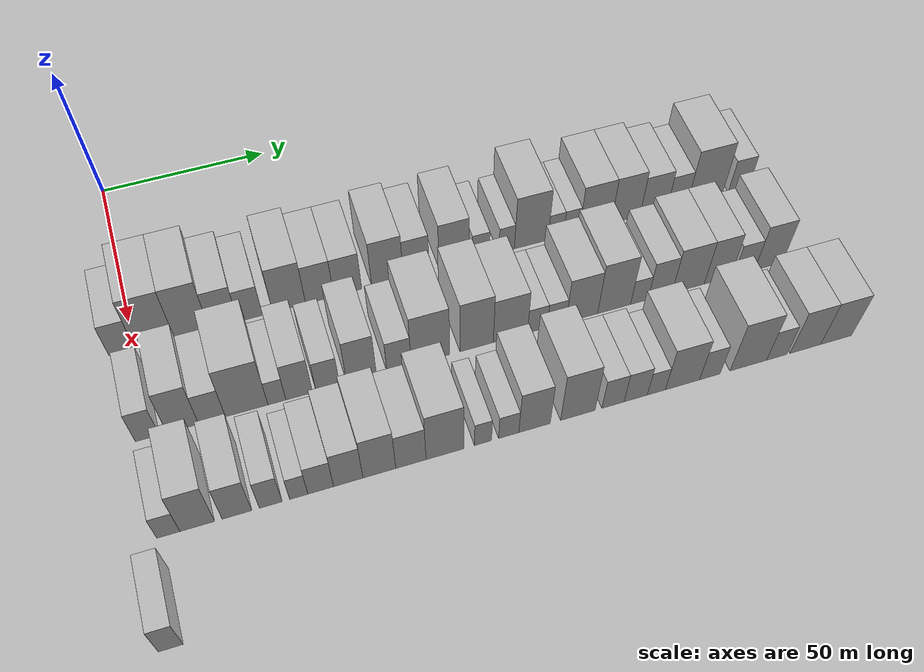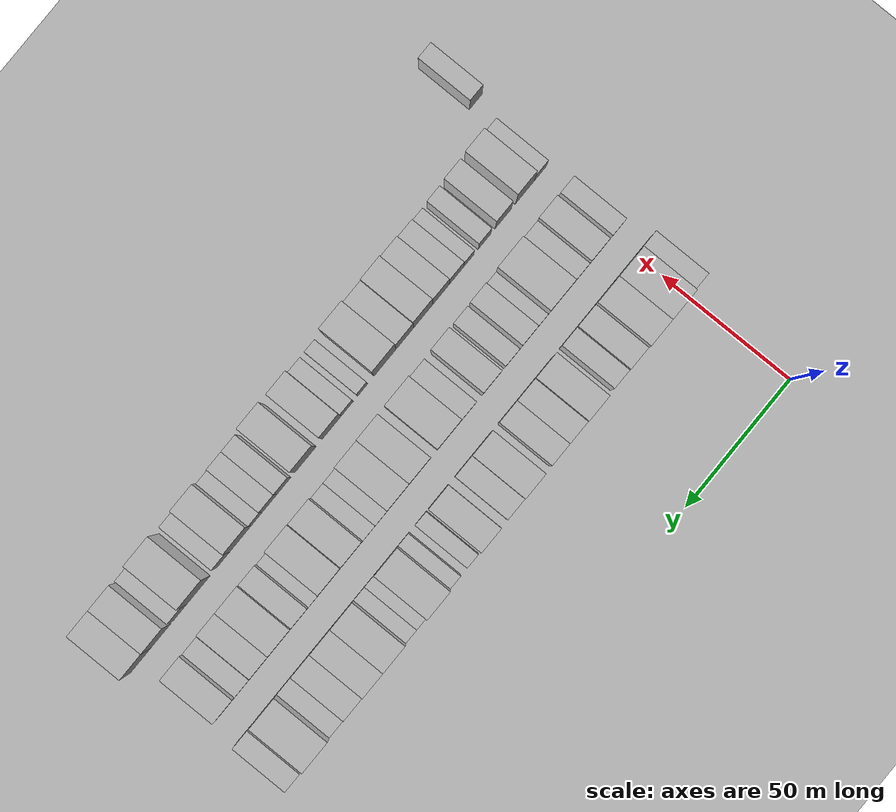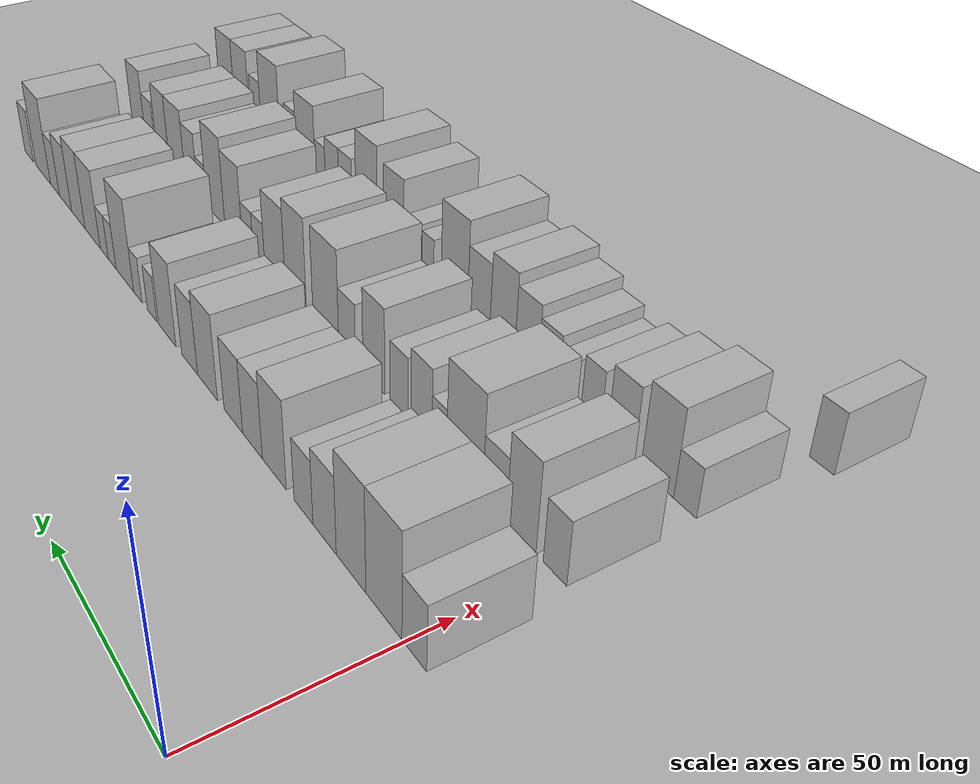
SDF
<sdf version="1.6">
 <world name="default">
  <include><name>ground_plane_1</name><uri>model://HANNAS_ground_plane</uri></include>
  <include>
   <name>ground_plane_2</name>
   <uri>model://HANNAS_ground_plane</uri>
   <pose>100 0 0  0 0 0</pose>
  </include>
  <model name="building_60">
   <static>1</static>
   <pose>50.0000 -3.3186 0 0.000000 0.000000 0.000000</pose>
   <link name="link">
    <pose>0 0 7.50 0 0 0</pose>
    <collision name="collision"><geometry><box><size>20.0000 7.2764 15.0000</size></box></geometry></collision>
    <visual name="visual">
     <cast_shadows>0</cast_shadows>
     <geometry><box><size>20.0000 7.2764 15.0000</size></box></geometry>
     <material>
      <script>
       <uri>model://HANNAS_wall/materials/scripts</uri>
       <uri>model://HANNAS_wall/materials/textures</uri>
       <name>vrc/HANNAS_wall</name>
      </script>
     </material>
    </visual>
   </link>
  </model>
  <model name="building_61">
   <static>1</static>
   <pose>50.0000 5.9535 0 0.000000 0.000000 0.000000</pose>
   <link name="link">
    <pose>0 0 12.00 0 0 0</pose>
    <collision name="collision"><geometry><box><size>20.0000 11.2679 24.0000</size></box></geometry></collision>
    <visual name="visual">
     <cast_shadows>0</cast_shadows>
     <geometry><box><size>20.0000 11.2679 24.0000</size></box></geometry>
     <material>
      <script>
       <uri>model://HANNAS_wall/materials/scripts</uri>
       <uri>model://HANNAS_wall/materials/textures</uri>
       <name>vrc/HANNAS_wall</name>
      </script>
     </material>
    </visual>
   </link>
  </model>
  <model name="building_62">
   <static>1</static>
   <pose>50.0000 16.5843 0 0.000000 0.000000 0.000000</pose>
   <link name="link">
    <pose>0 0 12.00 0 0 0</pose>
    <collision name="collision"><geometry><box><size>20.0000 9.9937 24.0000</size></box></geometry></collision>
    <visual name="visual">
     <cast_shadows>0</cast_shadows>
     <geometry><box><size>20.0000 9.9937 24.0000</size></box></geometry>
     <material>
      <script>
       <uri>model://HANNAS_wall/materials/scripts</uri>
       <uri>model://HANNAS_wall/materials/textures</uri>
       <name>vrc/HANNAS_wall</name>
      </script>
     </material>
    </visual>
   </link>
  </model>
  <model name="building_63">
   <static>1</static>
   <pose>50.0000 25.7559 0 0.000000 0.000000 0.000000</pose>
   <link name="link">
    <pose>0 0 9.00 0 0 0</pose>
    <collision name="collision"><geometry><box><size>20.0000 8.3497 18.0000</size></box></geometry></collision>
    <visual name="visual">
     <cast_shadows>0</cast_shadows>
     <geometry><box><size>20.0000 8.3497 18.0000</size></box></geometry>
     <material>
      <script>
       <uri>model://HANNAS_wall/materials/scripts</uri>
       <uri>model://HANNAS_wall/materials/textures</uri>
       <name>vrc/HANNAS_wall</name>
      </script>
     </material>
    </visual>
   </link>
  </model>
  <model name="building_64">
   <static>1</static>
   <pose>50.0000 33.4857 0 0.000000 0.000000 0.000000</pose>
   <link name="link">
    <pose>0 0 7.50 0 0 0</pose>
    <collision name="collision"><geometry><box><size>20.0000 7.1099 15.0000</size></box></geometry></collision>
    <visual name="visual">
     <cast_shadows>0</cast_shadows>
     <geometry><box><size>20.0000 7.1099 15.0000</size></box></geometry>
     <material>
      <script>
       <uri>model://HANNAS_wall/materials/scripts</uri>
       <uri>model://HANNAS_wall/materials/textures</uri>
       <name>vrc/HANNAS_wall</name>
      </script>
     </material>
    </visual>
   </link>
  </model>
  <model name="building_65">
   <static>1</static>
   <pose>50.0000 44.8790 0 0.000000 0.000000 0.000000</pose>
   <link name="link">
    <pose>0 0 10.50 0 0 0</pose>
    <collision name="collision"><geometry><box><size>20.0000 9.6767 21.0000</size></box></geometry></collision>
    <visual name="visual">
     <cast_shadows>0</cast_shadows>
     <geometry><box><size>20.0000 9.6767 21.0000</size></box></geometry>
     <material>
      <script>
       <uri>model://HANNAS_wall/materials/scripts</uri>
       <uri>model://HANNAS_wall/materials/textures</uri>
       <name>vrc/HANNAS_wall</name>
      </script>
     </material>
    </visual>
   </link>
  </model>
  <model name="building_66">
   <static>1</static>
   <pose>50.0000 53.9146 0 0.000000 0.000000 0.000000</pose>
   <link name="link">
    <pose>0 0 9.00 0 0 0</pose>
    <collision name="collision"><geometry><box><size>20.0000 8.3945 18.0000</size></box></geometry></collision>
    <visual name="visual">
     <cast_shadows>0</cast_shadows>
     <geometry><box><size>20.0000 8.3945 18.0000</size></box></geometry>
     <material>
      <script>
       <uri>model://HANNAS_wall/materials/scripts</uri>
       <uri>model://HANNAS_wall/materials/textures</uri>
       <name>vrc/HANNAS_wall</name>
      </script>
     </material>
    </visual>
   </link>
  </model>
  <model name="building_67">
   <static>1</static>
   <pose>50.0000 62.2940 0 0.000000 0.000000 0.000000</pose>
   <link name="link">
    <pose>0 0 9.00 0 0 0</pose>
    <collision name="collision"><geometry><box><size>20.0000 8.3644 18.0000</size></box></geometry></collision>
    <visual name="visual">
     <cast_shadows>0</cast_shadows>
     <geometry><box><size>20.0000 8.3644 18.0000</size></box></geometry>
     <material>
      <script>
       <uri>model://HANNAS_wall/materials/scripts</uri>
       <uri>model://HANNAS_wall/materials/textures</uri>
       <name>vrc/HANNAS_wall</name>
      </script>
     </material>
    </visual>
   </link>
  </model>
  <model name="building_68">
   <static>1</static>
   <pose>50.0000 74.2563 0 0.000000 0.000000 0.000000</pose>
   <link name="link">
    <pose>0 0 10.50 0 0 0</pose>
    <collision name="collision"><geometry><box><size>20.0000 9.5601 21.0000</size></box></geometry></collision>
    <visual name="visual">
     <cast_shadows>0</cast_shadows>
     <geometry><box><size>20.0000 9.5601 21.0000</size></box></geometry>
     <material>
      <script>
       <uri>model://HANNAS_wall/materials/scripts</uri>
       <uri>model://HANNAS_wall/materials/textures</uri>
       <name>vrc/HANNAS_wall</name>
      </script>
     </material>
    </visual>
   </link>
  </model>
  <model name="building_69">
   <static>1</static>
   <pose>50.0000 83.0197 0 0.000000 0.000000 0.000000</pose>
   <link name="link">
    <pose>0 0 9.00 0 0 0</pose>
    <collision name="collision"><geometry><box><size>20.0000 7.9668 18.0000</size></box></geometry></collision>
    <visual name="visual">
     <cast_shadows>0</cast_shadows>
     <geometry><box><size>20.0000 7.9668 18.0000</size></box></geometry>
     <material>
      <script>
       <uri>model://HANNAS_wall/materials/scripts</uri>
       <uri>model://HANNAS_wall/materials/textures</uri>
       <name>vrc/HANNAS_wall</name>
      </script>
     </material>
    </visual>
   </link>
  </model>
  <model name="building_70">
   <static>1</static>
   <pose>50.0000 94.6679 0 0.000000 0.000000 0.000000</pose>
   <link name="link">
    <pose>0 0 10.50 0 0 0</pose>
    <collision name="collision"><geometry><box><size>20.0000 9.3296 21.0000</size></box></geometry></collision>
    <visual name="visual">
     <cast_shadows>0</cast_shadows>
     <geometry><box><size>20.0000 9.3296 21.0000</size></box></geometry>
     <material>
      <script>
       <uri>model://HANNAS_wall/materials/scripts</uri>
       <uri>model://HANNAS_wall/materials/textures</uri>
       <name>vrc/HANNAS_wall</name>
      </script>
     </material>
    </visual>
   </link>
  </model>
  <model name="building_71">
   <static>1</static>
   <pose>50.0000 102.9779 0 0.000000 0.000000 0.000000</pose>
   <link name="link">
    <pose>0 0 6.00 0 0 0</pose>
    <collision name="collision"><geometry><box><size>20.0000 5.2904 12.0000</size></box></geometry></collision>
    <visual name="visual">
     <cast_shadows>0</cast_shadows>
     <geometry><box><size>20.0000 5.2904 12.0000</size></box></geometry>
     <material>
      <script>
       <uri>model://HANNAS_wall/materials/scripts</uri>
       <uri>model://HANNAS_wall/materials/textures</uri>
       <name>vrc/HANNAS_wall</name>
      </script>
     </material>
    </visual>
   </link>
  </model>
  <model name="building_72">
   <static>1</static>
   <pose>50.0000 111.0729 0 0.000000 0.000000 0.000000</pose>
   <link name="link">
    <pose>0 0 6.00 0 0 0</pose>
    <collision name="collision"><geometry><box><size>20.0000 4.8996 12.0000</size></box></geometry></collision>
    <visual name="visual">
     <cast_shadows>0</cast_shadows>
     <geometry><box><size>20.0000 4.8996 12.0000</size></box></geometry>
     <material>
      <script>
       <uri>model://HANNAS_wall/materials/scripts</uri>
       <uri>model://HANNAS_wall/materials/textures</uri>
       <name>vrc/HANNAS_wall</name>
      </script>
     </material>
    </visual>
   </link>
  </model>
  <model name="building_73">
   <static>1</static>
   <pose>50.0000 118.8591 0 0.000000 0.000000 0.000000</pose>
   <link name="link">
    <pose>0 0 12.00 0 0 0</pose>
    <collision name="collision"><geometry><box><size>20.0000 10.6728 24.0000</size></box></geometry></collision>
    <visual name="visual">
     <cast_shadows>0</cast_shadows>
     <geometry><box><size>20.0000 10.6728 24.0000</size></box></geometry>
     <material>
      <script>
       <uri>model://HANNAS_wall/materials/scripts</uri>
       <uri>model://HANNAS_wall/materials/textures</uri>
       <name>vrc/HANNAS_wall</name>
      </script>
     </material>
    </visual>
   </link>
  </model>
  <model name="building_74">
   <static>1</static>
   <pose>50.0000 126.6838 0 0.000000 0.000000 0.000000</pose>
   <link name="link">
    <pose>0 0 6.00 0 0 0</pose>
    <collision name="collision"><geometry><box><size>20.0000 4.9766 12.0000</size></box></geometry></collision>
    <visual name="visual">
     <cast_shadows>0</cast_shadows>
     <geometry><box><size>20.0000 4.9766 12.0000</size></box></geometry>
     <material>
      <script>
       <uri>model://HANNAS_wall/materials/scripts</uri>
       <uri>model://HANNAS_wall/materials/textures</uri>
       <name>vrc/HANNAS_wall</name>
      </script>
     </material>
    </visual>
   </link>
  </model>
  <model name="building_75">
   <static>1</static>
   <pose>50.0000 131.7215 0 0.000000 0.000000 0.000000</pose>
   <link name="link">
    <pose>0 0 6.00 0 0 0</pose>
    <collision name="collision"><geometry><box><size>20.0000 5.0987 12.0000</size></box></geometry></collision>
    <visual name="visual">
     <cast_shadows>0</cast_shadows>
     <geometry><box><size>20.0000 5.0987 12.0000</size></box></geometry>
     <material>
      <script>
       <uri>model://HANNAS_wall/materials/scripts</uri>
       <uri>model://HANNAS_wall/materials/textures</uri>
       <name>vrc/HANNAS_wall</name>
      </script>
     </material>
    </visual>
   </link>
  </model>
  <model name="building_76">
   <static>1</static>
   <pose>50.0000 139.4059 0 0.000000 0.000000 0.000000</pose>
   <link name="link">
    <pose>0 0 10.50 0 0 0</pose>
    <collision name="collision"><geometry><box><size>20.0000 10.2702 21.0000</size></box></geometry></collision>
    <visual name="visual">
     <cast_shadows>0</cast_shadows>
     <geometry><box><size>20.0000 10.2702 21.0000</size></box></geometry>
     <material>
      <script>
       <uri>model://HANNAS_wall/materials/scripts</uri>
       <uri>model://HANNAS_wall/materials/textures</uri>
       <name>vrc/HANNAS_wall</name>
      </script>
     </material>
    </visual>
   </link>
  </model>
  <model name="building_77">
   <static>1</static>
   <pose>50.0000 149.2481 0 0.000000 0.000000 0.000000</pose>
   <link name="link">
    <pose>0 0 10.50 0 0 0</pose>
    <collision name="collision"><geometry><box><size>20.0000 9.4142 21.0000</size></box></geometry></collision>
    <visual name="visual">
     <cast_shadows>0</cast_shadows>
     <geometry><box><size>20.0000 9.4142 21.0000</size></box></geometry>
     <material>
      <script>
       <uri>model://HANNAS_wall/materials/scripts</uri>
       <uri>model://HANNAS_wall/materials/textures</uri>
       <name>vrc/HANNAS_wall</name>
      </script>
     </material>
    </visual>
   </link>
  </model>
  <model name="building_78">
   <static>1</static>
   <pose>50.0000 158.4346 0 0.000000 0.000000 0.000000</pose>
   <link name="link">
    <pose>0 0 9.00 0 0 0</pose>
    <collision name="collision"><geometry><box><size>20.0000 8.9589 18.0000</size></box></geometry></collision>
    <visual name="visual">
     <cast_shadows>0</cast_shadows>
     <geometry><box><size>20.0000 8.9589 18.0000</size></box></geometry>
     <material>
      <script>
       <uri>model://HANNAS_wall/materials/scripts</uri>
       <uri>model://HANNAS_wall/materials/textures</uri>
       <name>vrc/HANNAS_wall</name>
      </script>
     </material>
    </visual>
   </link>
  </model>
  <model name="building_79">
   <static>1</static>
   <pose>50.0000 166.2751 0 0.000000 0.000000 0.000000</pose>
   <link name="link">
    <pose>0 0 7.50 0 0 0</pose>
    <collision name="collision"><geometry><box><size>20.0000 6.7220 15.0000</size></box></geometry></collision>
    <visual name="visual">
     <cast_shadows>0</cast_shadows>
     <geometry><box><size>20.0000 6.7220 15.0000</size></box></geometry>
     <material>
      <script>
       <uri>model://HANNAS_wall/materials/scripts</uri>
       <uri>model://HANNAS_wall/materials/textures</uri>
       <name>vrc/HANNAS_wall</name>
      </script>
     </material>
    </visual>
   </link>
  </model>
  <model name="building_80">
   <static>1</static>
   <pose>50.0000 175.4616 0 0.000000 0.000000 0.000000</pose>
   <link name="link">
    <pose>0 0 12.00 0 0 0</pose>
    <collision name="collision"><geometry><box><size>20.0000 11.6511 24.0000</size></box></geometry></collision>
    <visual name="visual">
     <cast_shadows>0</cast_shadows>
     <geometry><box><size>20.0000 11.6511 24.0000</size></box></geometry>
     <material>
      <script>
       <uri>model://HANNAS_wall/materials/scripts</uri>
       <uri>model://HANNAS_wall/materials/textures</uri>
       <name>vrc/HANNAS_wall</name>
      </script>
     </material>
    </visual>
   </link>
  </model>
  <model name="building_81">
   <static>1</static>
   <pose>50.0000 186.7362 0 0.000000 0.000000 0.000000</pose>
   <link name="link">
    <pose>0 0 7.50 0 0 0</pose>
    <collision name="collision"><geometry><box><size>20.0000 6.8980 15.0000</size></box></geometry></collision>
    <visual name="visual">
     <cast_shadows>0</cast_shadows>
     <geometry><box><size>20.0000 6.8980 15.0000</size></box></geometry>
     <material>
      <script>
       <uri>model://HANNAS_wall/materials/scripts</uri>
       <uri>model://HANNAS_wall/materials/textures</uri>
       <name>vrc/HANNAS_wall</name>
      </script>
     </material>
    </visual>
   </link>
  </model>
  <model name="building_167">
   <static>1</static>
   <pose>79.0000 -0.9709 0 0.000000 0.000000 0.000000</pose>
   <link name="link">
    <pose>0 0 7.50 0 0 0</pose>
    <collision name="collision"><geometry><box><size>20.0000 6.4832 15.0000</size></box></geometry></collision>
    <visual name="visual">
     <cast_shadows>0</cast_shadows>
     <geometry><box><size>20.0000 6.4832 15.0000</size></box></geometry>
     <material>
      <script>
       <uri>model://HANNAS_wall/materials/scripts</uri>
       <uri>model://HANNAS_wall/materials/textures</uri>
       <name>vrc/HANNAS_wall</name>
      </script>
     </material>
    </visual>
   </link>
  </model>
  <model name="building_168">
   <static>1</static>
   <pose>79.0000 8.6030 0 0.000000 0.000000 0.000000</pose>
   <link name="link">
    <pose>0 0 10.50 0 0 0</pose>
    <collision name="collision"><geometry><box><size>20.0000 8.6647 21.0000</size></box></geometry></collision>
    <visual name="visual">
     <cast_shadows>0</cast_shadows>
     <geometry><box><size>20.0000 8.6647 21.0000</size></box></geometry>
     <material>
      <script>
       <uri>model://HANNAS_wall/materials/scripts</uri>
       <uri>model://HANNAS_wall/materials/textures</uri>
       <name>vrc/HANNAS_wall</name>
      </script>
     </material>
    </visual>
   </link>
  </model>
  <model name="building_169">
   <static>1</static>
   <pose>79.0000 16.6004 0 0.000000 0.000000 0.000000</pose>
   <link name="link">
    <pose>0 0 7.50 0 0 0</pose>
    <collision name="collision"><geometry><box><size>20.0000 7.3301 15.0000</size></box></geometry></collision>
    <visual name="visual">
     <cast_shadows>0</cast_shadows>
     <geometry><box><size>20.0000 7.3301 15.0000</size></box></geometry>
     <material>
      <script>
       <uri>model://HANNAS_wall/materials/scripts</uri>
       <uri>model://HANNAS_wall/materials/textures</uri>
       <name>vrc/HANNAS_wall</name>
      </script>
     </material>
    </visual>
   </link>
  </model>
  <model name="building_170">
   <static>1</static>
   <pose>79.0000 26.1808 0 0.000000 0.000000 0.000000</pose>
   <link name="link">
    <pose>0 0 12.00 0 0 0</pose>
    <collision name="collision"><geometry><box><size>20.0000 11.8307 24.0000</size></box></geometry></collision>
    <visual name="visual">
     <cast_shadows>0</cast_shadows>
     <geometry><box><size>20.0000 11.8307 24.0000</size></box></geometry>
     <material>
      <script>
       <uri>model://HANNAS_wall/materials/scripts</uri>
       <uri>model://HANNAS_wall/materials/textures</uri>
       <name>vrc/HANNAS_wall</name>
      </script>
     </material>
    </visual>
   </link>
  </model>
  <model name="building_171">
   <static>1</static>
   <pose>79.0000 34.6026 0 0.000000 0.000000 0.000000</pose>
   <link name="link">
    <pose>0 0 6.00 0 0 0</pose>
    <collision name="collision"><geometry><box><size>20.0000 5.0128 12.0000</size></box></geometry></collision>
    <visual name="visual">
     <cast_shadows>0</cast_shadows>
     <geometry><box><size>20.0000 5.0128 12.0000</size></box></geometry>
     <material>
      <script>
       <uri>model://HANNAS_wall/materials/scripts</uri>
       <uri>model://HANNAS_wall/materials/textures</uri>
       <name>vrc/HANNAS_wall</name>
      </script>
     </material>
    </visual>
   </link>
  </model>
  <model name="building_172">
   <static>1</static>
   <pose>79.0000 40.8529 0 0.000000 0.000000 0.000000</pose>
   <link name="link">
    <pose>0 0 9.00 0 0 0</pose>
    <collision name="collision"><geometry><box><size>20.0000 7.4879 18.0000</size></box></geometry></collision>
    <visual name="visual">
     <cast_shadows>0</cast_shadows>
     <geometry><box><size>20.0000 7.4879 18.0000</size></box></geometry>
     <material>
      <script>
       <uri>model://HANNAS_wall/materials/scripts</uri>
       <uri>model://HANNAS_wall/materials/textures</uri>
       <name>vrc/HANNAS_wall</name>
      </script>
     </material>
    </visual>
   </link>
  </model>
  <model name="building_173">
   <static>1</static>
   <pose>79.0000 48.9459 0 0.000000 0.000000 0.000000</pose>
   <link name="link">
    <pose>0 0 7.50 0 0 0</pose>
    <collision name="collision"><geometry><box><size>20.0000 6.6981 15.0000</size></box></geometry></collision>
    <visual name="visual">
     <cast_shadows>0</cast_shadows>
     <geometry><box><size>20.0000 6.6981 15.0000</size></box></geometry>
     <material>
      <script>
       <uri>model://HANNAS_wall/materials/scripts</uri>
       <uri>model://HANNAS_wall/materials/textures</uri>
       <name>vrc/HANNAS_wall</name>
      </script>
     </material>
    </visual>
   </link>
  </model>
  <model name="building_174">
   <static>1</static>
   <pose>79.0000 58.5624 0 0.000000 0.000000 0.000000</pose>
   <link name="link">
    <pose>0 0 10.50 0 0 0</pose>
    <collision name="collision"><geometry><box><size>20.0000 8.5348 21.0000</size></box></geometry></collision>
    <visual name="visual">
     <cast_shadows>0</cast_shadows>
     <geometry><box><size>20.0000 8.5348 21.0000</size></box></geometry>
     <material>
      <script>
       <uri>model://HANNAS_wall/materials/scripts</uri>
       <uri>model://HANNAS_wall/materials/textures</uri>
       <name>vrc/HANNAS_wall</name>
      </script>
     </material>
    </visual>
   </link>
  </model>
  <model name="building_175">
   <static>1</static>
   <pose>79.0000 69.3627 0 0.000000 0.000000 0.000000</pose>
   <link name="link">
    <pose>0 0 7.50 0 0 0</pose>
    <collision name="collision"><geometry><box><size>20.0000 7.0658 15.0000</size></box></geometry></collision>
    <visual name="visual">
     <cast_shadows>0</cast_shadows>
     <geometry><box><size>20.0000 7.0658 15.0000</size></box></geometry>
     <material>
      <script>
       <uri>model://HANNAS_wall/materials/scripts</uri>
       <uri>model://HANNAS_wall/materials/textures</uri>
       <name>vrc/HANNAS_wall</name>
      </script>
     </material>
    </visual>
   </link>
  </model>
  <model name="building_176">
   <static>1</static>
   <pose>79.0000 78.5263 0 0.000000 0.000000 0.000000</pose>
   <link name="link">
    <pose>0 0 12.00 0 0 0</pose>
    <collision name="collision"><geometry><box><size>20.0000 11.2614 24.0000</size></box></geometry></collision>
    <visual name="visual">
     <cast_shadows>0</cast_shadows>
     <geometry><box><size>20.0000 11.2614 24.0000</size></box></geometry>
     <material>
      <script>
       <uri>model://HANNAS_wall/materials/scripts</uri>
       <uri>model://HANNAS_wall/materials/textures</uri>
       <name>vrc/HANNAS_wall</name>
      </script>
     </material>
    </visual>
   </link>
  </model>
  <model name="building_177">
   <static>1</static>
   <pose>79.0000 92.1079 0 0.000000 0.000000 0.000000</pose>
   <link name="link">
    <pose>0 0 12.00 0 0 0</pose>
    <collision name="collision"><geometry><box><size>20.0000 9.9020 24.0000</size></box></geometry></collision>
    <visual name="visual">
     <cast_shadows>0</cast_shadows>
     <geometry><box><size>20.0000 9.9020 24.0000</size></box></geometry>
     <material>
      <script>
       <uri>model://HANNAS_wall/materials/scripts</uri>
       <uri>model://HANNAS_wall/materials/textures</uri>
       <name>vrc/HANNAS_wall</name>
      </script>
     </material>
    </visual>
   </link>
  </model>
  <model name="building_178">
   <static>1</static>
   <pose>79.0000 102.1852 0 0.000000 0.000000 0.000000</pose>
   <link name="link">
    <pose>0 0 10.50 0 0 0</pose>
    <collision name="collision"><geometry><box><size>20.0000 10.2526 21.0000</size></box></geometry></collision>
    <visual name="visual">
     <cast_shadows>0</cast_shadows>
     <geometry><box><size>20.0000 10.2526 21.0000</size></box></geometry>
     <material>
      <script>
       <uri>model://HANNAS_wall/materials/scripts</uri>
       <uri>model://HANNAS_wall/materials/textures</uri>
       <name>vrc/HANNAS_wall</name>
      </script>
     </material>
    </visual>
   </link>
  </model>
  <model name="building_179">
   <static>1</static>
   <pose>79.0000 110.2713 0 0.000000 0.000000 0.000000</pose>
   <link name="link">
    <pose>0 0 6.00 0 0 0</pose>
    <collision name="collision"><geometry><box><size>20.0000 5.9196 12.0000</size></box></geometry></collision>
    <visual name="visual">
     <cast_shadows>0</cast_shadows>
     <geometry><box><size>20.0000 5.9196 12.0000</size></box></geometry>
     <material>
      <script>
       <uri>model://HANNAS_wall/materials/scripts</uri>
       <uri>model://HANNAS_wall/materials/textures</uri>
       <name>vrc/HANNAS_wall</name>
      </script>
     </material>
    </visual>
   </link>
  </model>
  <model name="building_180">
   <static>1</static>
   <pose>79.0000 116.1020 0 0.000000 0.000000 0.000000</pose>
   <link name="link">
    <pose>0 0 6.00 0 0 0</pose>
    <collision name="collision"><geometry><box><size>20.0000 5.7418 12.0000</size></box></geometry></collision>
    <visual name="visual">
     <cast_shadows>0</cast_shadows>
     <geometry><box><size>20.0000 5.7418 12.0000</size></box></geometry>
     <material>
      <script>
       <uri>model://HANNAS_wall/materials/scripts</uri>
       <uri>model://HANNAS_wall/materials/textures</uri>
       <name>vrc/HANNAS_wall</name>
      </script>
     </material>
    </visual>
   </link>
  </model>
  <model name="building_181">
   <static>1</static>
   <pose>79.0000 123.8220 0 0.000000 0.000000 0.000000</pose>
   <link name="link">
    <pose>0 0 10.50 0 0 0</pose>
    <collision name="collision"><geometry><box><size>20.0000 9.6983 21.0000</size></box></geometry></collision>
    <visual name="visual">
     <cast_shadows>0</cast_shadows>
     <geometry><box><size>20.0000 9.6983 21.0000</size></box></geometry>
     <material>
      <script>
       <uri>model://HANNAS_wall/materials/scripts</uri>
       <uri>model://HANNAS_wall/materials/textures</uri>
       <name>vrc/HANNAS_wall</name>
      </script>
     </material>
    </visual>
   </link>
  </model>
  <model name="building_182">
   <static>1</static>
   <pose>79.0000 133.7824 0 0.000000 0.000000 0.000000</pose>
   <link name="link">
    <pose>0 0 12.00 0 0 0</pose>
    <collision name="collision"><geometry><box><size>20.0000 10.2224 24.0000</size></box></geometry></collision>
    <visual name="visual">
     <cast_shadows>0</cast_shadows>
     <geometry><box><size>20.0000 10.2224 24.0000</size></box></geometry>
     <material>
      <script>
       <uri>model://HANNAS_wall/materials/scripts</uri>
       <uri>model://HANNAS_wall/materials/textures</uri>
       <name>vrc/HANNAS_wall</name>
      </script>
     </material>
    </visual>
   </link>
  </model>
  <model name="building_183">
   <static>1</static>
   <pose>79.0000 141.5916 0 0.000000 0.000000 0.000000</pose>
   <link name="link">
    <pose>0 0 6.00 0 0 0</pose>
    <collision name="collision"><geometry><box><size>20.0000 5.3961 12.0000</size></box></geometry></collision>
    <visual name="visual">
     <cast_shadows>0</cast_shadows>
     <geometry><box><size>20.0000 5.3961 12.0000</size></box></geometry>
     <material>
      <script>
       <uri>model://HANNAS_wall/materials/scripts</uri>
       <uri>model://HANNAS_wall/materials/textures</uri>
       <name>vrc/HANNAS_wall</name>
      </script>
     </material>
    </visual>
   </link>
  </model>
  <model name="building_184">
   <static>1</static>
   <pose>79.0000 148.0615 0 0.000000 0.000000 0.000000</pose>
   <link name="link">
    <pose>0 0 9.00 0 0 0</pose>
    <collision name="collision"><geometry><box><size>20.0000 7.5436 18.0000</size></box></geometry></collision>
    <visual name="visual">
     <cast_shadows>0</cast_shadows>
     <geometry><box><size>20.0000 7.5436 18.0000</size></box></geometry>
     <material>
      <script>
       <uri>model://HANNAS_wall/materials/scripts</uri>
       <uri>model://HANNAS_wall/materials/textures</uri>
       <name>vrc/HANNAS_wall</name>
      </script>
     </material>
    </visual>
   </link>
  </model>
  <model name="building_185">
   <static>1</static>
   <pose>79.0000 156.9551 0 0.000000 0.000000 0.000000</pose>
   <link name="link">
    <pose>0 0 10.50 0 0 0</pose>
    <collision name="collision"><geometry><box><size>20.0000 10.2437 21.0000</size></box></geometry></collision>
    <visual name="visual">
     <cast_shadows>0</cast_shadows>
     <geometry><box><size>20.0000 10.2437 21.0000</size></box></geometry>
     <material>
      <script>
       <uri>model://HANNAS_wall/materials/scripts</uri>
       <uri>model://HANNAS_wall/materials/textures</uri>
       <name>vrc/HANNAS_wall</name>
      </script>
     </material>
    </visual>
   </link>
  </model>
  <model name="building_186">
   <static>1</static>
   <pose>79.0000 166.2853 0 0.000000 0.000000 0.000000</pose>
   <link name="link">
    <pose>0 0 10.50 0 0 0</pose>
    <collision name="collision"><geometry><box><size>20.0000 8.4167 21.0000</size></box></geometry></collision>
    <visual name="visual">
     <cast_shadows>0</cast_shadows>
     <geometry><box><size>20.0000 8.4167 21.0000</size></box></geometry>
     <material>
      <script>
       <uri>model://HANNAS_wall/materials/scripts</uri>
       <uri>model://HANNAS_wall/materials/textures</uri>
       <name>vrc/HANNAS_wall</name>
      </script>
     </material>
    </visual>
   </link>
  </model>
  <model name="building_187">
   <static>1</static>
   <pose>79.0000 174.8404 0 0.000000 0.000000 0.000000</pose>
   <link name="link">
    <pose>0 0 7.50 0 0 0</pose>
    <collision name="collision"><geometry><box><size>20.0000 6.6935 15.0000</size></box></geometry></collision>
    <visual name="visual">
     <cast_shadows>0</cast_shadows>
     <geometry><box><size>20.0000 6.6935 15.0000</size></box></geometry>
     <material>
      <script>
       <uri>model://HANNAS_wall/materials/scripts</uri>
       <uri>model://HANNAS_wall/materials/textures</uri>
       <name>vrc/HANNAS_wall</name>
      </script>
     </material>
    </visual>
   </link>
  </model>
  <model name="building_188">
   <static>1</static>
   <pose>79.0000 182.7150 0 0.000000 0.000000 0.000000</pose>
   <link name="link">
    <pose>0 0 10.50 0 0 0</pose>
    <collision name="collision"><geometry><box><size>20.0000 9.0557 21.0000</size></box></geometry></collision>
    <visual name="visual">
     <cast_shadows>0</cast_shadows>
     <geometry><box><size>20.0000 9.0557 21.0000</size></box></geometry>
     <material>
      <script>
       <uri>model://HANNAS_wall/materials/scripts</uri>
       <uri>model://HANNAS_wall/materials/textures</uri>
       <name>vrc/HANNAS_wall</name>
      </script>
     </material>
    </visual>
   </link>
  </model>
  <model name="building_285">
   <static>1</static>
   <pose>108.0000 -0.4358 0 0.000000 0.000000 0.000000</pose>
   <link name="link">
    <pose>0 0 6.00 0 0 0</pose>
    <collision name="collision"><geometry><box><size>20.0000 5.9710 12.0000</size></box></geometry></collision>
    <visual name="visual">
     <cast_shadows>0</cast_shadows>
     <geometry><box><size>20.0000 5.9710 12.0000</size></box></geometry>
     <material>
      <script>
       <uri>model://HANNAS_wall/materials/scripts</uri>
       <uri>model://HANNAS_wall/materials/textures</uri>
       <name>vrc/HANNAS_wall</name>
      </script>
     </material>
    </visual>
   </link>
  </model>
  <model name="building_286">
   <static>1</static>
   <pose>108.0000 7.0276 0 0.000000 0.000000 0.000000</pose>
   <link name="link">
    <pose>0 0 10.50 0 0 0</pose>
    <collision name="collision"><geometry><box><size>20.0000 8.9559 21.0000</size></box></geometry></collision>
    <visual name="visual">
     <cast_shadows>0</cast_shadows>
     <geometry><box><size>20.0000 8.9559 21.0000</size></box></geometry>
     <material>
      <script>
       <uri>model://HANNAS_wall/materials/scripts</uri>
       <uri>model://HANNAS_wall/materials/textures</uri>
       <name>vrc/HANNAS_wall</name>
      </script>
     </material>
    </visual>
   </link>
  </model>
  <model name="building_287">
   <static>1</static>
   <pose>108.0000 17.3873 0 0.000000 0.000000 0.000000</pose>
   <link name="link">
    <pose>0 0 9.00 0 0 0</pose>
    <collision name="collision"><geometry><box><size>20.0000 7.7633 18.0000</size></box></geometry></collision>
    <visual name="visual">
     <cast_shadows>0</cast_shadows>
     <geometry><box><size>20.0000 7.7633 18.0000</size></box></geometry>
     <material>
      <script>
       <uri>model://HANNAS_wall/materials/scripts</uri>
       <uri>model://HANNAS_wall/materials/textures</uri>
       <name>vrc/HANNAS_wall</name>
      </script>
     </material>
    </visual>
   </link>
  </model>
  <model name="building_288">
   <static>1</static>
   <pose>108.0000 26.2926 0 0.000000 0.000000 0.000000</pose>
   <link name="link">
    <pose>0 0 7.50 0 0 0</pose>
    <collision name="collision"><geometry><box><size>20.0000 6.0474 15.0000</size></box></geometry></collision>
    <visual name="visual">
     <cast_shadows>0</cast_shadows>
     <geometry><box><size>20.0000 6.0474 15.0000</size></box></geometry>
     <material>
      <script>
       <uri>model://HANNAS_wall/materials/scripts</uri>
       <uri>model://HANNAS_wall/materials/textures</uri>
       <name>vrc/HANNAS_wall</name>
      </script>
     </material>
    </visual>
   </link>
  </model>
  <model name="building_289">
   <static>1</static>
   <pose>108.0000 33.7464 0 0.000000 0.000000 0.000000</pose>
   <link name="link">
    <pose>0 0 6.00 0 0 0</pose>
    <collision name="collision"><geometry><box><size>20.0000 4.8602 12.0000</size></box></geometry></collision>
    <visual name="visual">
     <cast_shadows>0</cast_shadows>
     <geometry><box><size>20.0000 4.8602 12.0000</size></box></geometry>
     <material>
      <script>
       <uri>model://HANNAS_wall/materials/scripts</uri>
       <uri>model://HANNAS_wall/materials/textures</uri>
       <name>vrc/HANNAS_wall</name>
      </script>
     </material>
    </visual>
   </link>
  </model>
  <model name="building_290">
   <static>1</static>
   <pose>108.0000 39.6353 0 0.000000 0.000000 0.000000</pose>
   <link name="link">
    <pose>0 0 7.50 0 0 0</pose>
    <collision name="collision"><geometry><box><size>20.0000 6.9175 15.0000</size></box></geometry></collision>
    <visual name="visual">
     <cast_shadows>0</cast_shadows>
     <geometry><box><size>20.0000 6.9175 15.0000</size></box></geometry>
     <material>
      <script>
       <uri>model://HANNAS_wall/materials/scripts</uri>
       <uri>model://HANNAS_wall/materials/textures</uri>
       <name>vrc/HANNAS_wall</name>
      </script>
     </material>
    </visual>
   </link>
  </model>
  <model name="building_291">
   <static>1</static>
   <pose>108.0000 47.0670 0 0.000000 0.000000 0.000000</pose>
   <link name="link">
    <pose>0 0 9.00 0 0 0</pose>
    <collision name="collision"><geometry><box><size>20.0000 7.9460 18.0000</size></box></geometry></collision>
    <visual name="visual">
     <cast_shadows>0</cast_shadows>
     <geometry><box><size>20.0000 7.9460 18.0000</size></box></geometry>
     <material>
      <script>
       <uri>model://HANNAS_wall/materials/scripts</uri>
       <uri>model://HANNAS_wall/materials/textures</uri>
       <name>vrc/HANNAS_wall</name>
      </script>
     </material>
    </visual>
   </link>
  </model>
  <model name="building_292">
   <static>1</static>
   <pose>108.0000 55.5346 0 0.000000 0.000000 0.000000</pose>
   <link name="link">
    <pose>0 0 10.50 0 0 0</pose>
    <collision name="collision"><geometry><box><size>20.0000 8.9892 21.0000</size></box></geometry></collision>
    <visual name="visual">
     <cast_shadows>0</cast_shadows>
     <geometry><box><size>20.0000 8.9892 21.0000</size></box></geometry>
     <material>
      <script>
       <uri>model://HANNAS_wall/materials/scripts</uri>
       <uri>model://HANNAS_wall/materials/textures</uri>
       <name>vrc/HANNAS_wall</name>
      </script>
     </material>
    </visual>
   </link>
  </model>
  <model name="building_293">
   <static>1</static>
   <pose>108.0000 64.2094 0 0.000000 0.000000 0.000000</pose>
   <link name="link">
    <pose>0 0 9.00 0 0 0</pose>
    <collision name="collision"><geometry><box><size>20.0000 8.3604 18.0000</size></box></geometry></collision>
    <visual name="visual">
     <cast_shadows>0</cast_shadows>
     <geometry><box><size>20.0000 8.3604 18.0000</size></box></geometry>
     <material>
      <script>
       <uri>model://HANNAS_wall/materials/scripts</uri>
       <uri>model://HANNAS_wall/materials/textures</uri>
       <name>vrc/HANNAS_wall</name>
      </script>
     </material>
    </visual>
   </link>
  </model>
  <model name="building_294">
   <static>1</static>
   <pose>108.0000 73.6441 0 0.000000 0.000000 0.000000</pose>
   <link name="link">
    <pose>0 0 12.00 0 0 0</pose>
    <collision name="collision"><geometry><box><size>20.0000 10.5091 24.0000</size></box></geometry></collision>
    <visual name="visual">
     <cast_shadows>0</cast_shadows>
     <geometry><box><size>20.0000 10.5091 24.0000</size></box></geometry>
     <material>
      <script>
       <uri>model://HANNAS_wall/materials/scripts</uri>
       <uri>model://HANNAS_wall/materials/textures</uri>
       <name>vrc/HANNAS_wall</name>
      </script>
     </material>
    </visual>
   </link>
  </model>
  <model name="building_295">
   <static>1</static>
   <pose>108.0000 84.3169 0 0.000000 0.000000 0.000000</pose>
   <link name="link">
    <pose>0 0 6.00 0 0 0</pose>
    <collision name="collision"><geometry><box><size>20.0000 4.8365 12.0000</size></box></geometry></collision>
    <visual name="visual">
     <cast_shadows>0</cast_shadows>
     <geometry><box><size>20.0000 4.8365 12.0000</size></box></geometry>
     <material>
      <script>
       <uri>model://HANNAS_wall/materials/scripts</uri>
       <uri>model://HANNAS_wall/materials/textures</uri>
       <name>vrc/HANNAS_wall</name>
      </script>
     </material>
    </visual>
   </link>
  </model>
  <model name="building_296">
   <static>1</static>
   <pose>108.0000 91.6062 0 0.000000 0.000000 0.000000</pose>
   <link name="link">
    <pose>0 0 6.00 0 0 0</pose>
    <collision name="collision"><geometry><box><size>20.0000 5.7421 12.0000</size></box></geometry></collision>
    <visual name="visual">
     <cast_shadows>0</cast_shadows>
     <geometry><box><size>20.0000 5.7421 12.0000</size></box></geometry>
     <material>
      <script>
       <uri>model://HANNAS_wall/materials/scripts</uri>
       <uri>model://HANNAS_wall/materials/textures</uri>
       <name>vrc/HANNAS_wall</name>
      </script>
     </material>
    </visual>
   </link>
  </model>
  <model name="building_297">
   <static>1</static>
   <pose>108.0000 98.9713 0 0.000000 0.000000 0.000000</pose>
   <link name="link">
    <pose>0 0 10.50 0 0 0</pose>
    <collision name="collision"><geometry><box><size>20.0000 8.9882 21.0000</size></box></geometry></collision>
    <visual name="visual">
     <cast_shadows>0</cast_shadows>
     <geometry><box><size>20.0000 8.9882 21.0000</size></box></geometry>
     <material>
      <script>
       <uri>model://HANNAS_wall/materials/scripts</uri>
       <uri>model://HANNAS_wall/materials/textures</uri>
       <name>vrc/HANNAS_wall</name>
      </script>
     </material>
    </visual>
   </link>
  </model>
  <model name="building_298">
   <static>1</static>
   <pose>108.0000 111.4779 0 0.000000 0.000000 0.000000</pose>
   <link name="link">
    <pose>0 0 12.00 0 0 0</pose>
    <collision name="collision"><geometry><box><size>20.0000 10.0250 24.0000</size></box></geometry></collision>
    <visual name="visual">
     <cast_shadows>0</cast_shadows>
     <geometry><box><size>20.0000 10.0250 24.0000</size></box></geometry>
     <material>
      <script>
       <uri>model://HANNAS_wall/materials/scripts</uri>
       <uri>model://HANNAS_wall/materials/textures</uri>
       <name>vrc/HANNAS_wall</name>
      </script>
     </material>
    </visual>
   </link>
  </model>
  <model name="building_299">
   <static>1</static>
   <pose>108.0000 121.7499 0 0.000000 0.000000 0.000000</pose>
   <link name="link">
    <pose>0 0 7.50 0 0 0</pose>
    <collision name="collision"><geometry><box><size>20.0000 6.5190 15.0000</size></box></geometry></collision>
    <visual name="visual">
     <cast_shadows>0</cast_shadows>
     <geometry><box><size>20.0000 6.5190 15.0000</size></box></geometry>
     <material>
      <script>
       <uri>model://HANNAS_wall/materials/scripts</uri>
       <uri>model://HANNAS_wall/materials/textures</uri>
       <name>vrc/HANNAS_wall</name>
      </script>
     </material>
    </visual>
   </link>
  </model>
  <model name="building_300">
   <static>1</static>
   <pose>108.0000 128.4428 0 0.000000 0.000000 0.000000</pose>
   <link name="link">
    <pose>0 0 7.50 0 0 0</pose>
    <collision name="collision"><geometry><box><size>20.0000 6.8668 15.0000</size></box></geometry></collision>
    <visual name="visual">
     <cast_shadows>0</cast_shadows>
     <geometry><box><size>20.0000 6.8668 15.0000</size></box></geometry>
     <material>
      <script>
       <uri>model://HANNAS_wall/materials/scripts</uri>
       <uri>model://HANNAS_wall/materials/textures</uri>
       <name>vrc/HANNAS_wall</name>
      </script>
     </material>
    </visual>
   </link>
  </model>
  <model name="building_301">
   <static>1</static>
   <pose>108.0000 134.5554 0 0.000000 0.000000 0.000000</pose>
   <link name="link">
    <pose>0 0 6.00 0 0 0</pose>
    <collision name="collision"><geometry><box><size>20.0000 5.3585 12.0000</size></box></geometry></collision>
    <visual name="visual">
     <cast_shadows>0</cast_shadows>
     <geometry><box><size>20.0000 5.3585 12.0000</size></box></geometry>
     <material>
      <script>
       <uri>model://HANNAS_wall/materials/scripts</uri>
       <uri>model://HANNAS_wall/materials/textures</uri>
       <name>vrc/HANNAS_wall</name>
      </script>
     </material>
    </visual>
   </link>
  </model>
  <model name="building_302">
   <static>1</static>
   <pose>108.0000 142.3782 0 0.000000 0.000000 0.000000</pose>
   <link name="link">
    <pose>0 0 10.50 0 0 0</pose>
    <collision name="collision"><geometry><box><size>20.0000 10.2870 21.0000</size></box></geometry></collision>
    <visual name="visual">
     <cast_shadows>0</cast_shadows>
     <geometry><box><size>20.0000 10.2870 21.0000</size></box></geometry>
     <material>
      <script>
       <uri>model://HANNAS_wall/materials/scripts</uri>
       <uri>model://HANNAS_wall/materials/textures</uri>
       <name>vrc/HANNAS_wall</name>
      </script>
     </material>
    </visual>
   </link>
  </model>
  <model name="building_303">
   <static>1</static>
   <pose>108.0000 150.6469 0 0.000000 0.000000 0.000000</pose>
   <link name="link">
    <pose>0 0 7.50 0 0 0</pose>
    <collision name="collision"><geometry><box><size>20.0000 6.2504 15.0000</size></box></geometry></collision>
    <visual name="visual">
     <cast_shadows>0</cast_shadows>
     <geometry><box><size>20.0000 6.2504 15.0000</size></box></geometry>
     <material>
      <script>
       <uri>model://HANNAS_wall/materials/scripts</uri>
       <uri>model://HANNAS_wall/materials/textures</uri>
       <name>vrc/HANNAS_wall</name>
      </script>
     </material>
    </visual>
   </link>
  </model>
  <model name="building_304">
   <static>1</static>
   <pose>108.0000 162.3793 0 0.000000 0.000000 0.000000</pose>
   <link name="link">
    <pose>0 0 12.00 0 0 0</pose>
    <collision name="collision"><geometry><box><size>20.0000 11.2144 24.0000</size></box></geometry></collision>
    <visual name="visual">
     <cast_shadows>0</cast_shadows>
     <geometry><box><size>20.0000 11.2144 24.0000</size></box></geometry>
     <material>
      <script>
       <uri>model://HANNAS_wall/materials/scripts</uri>
       <uri>model://HANNAS_wall/materials/textures</uri>
       <name>vrc/HANNAS_wall</name>
      </script>
     </material>
    </visual>
   </link>
  </model>
  <model name="building_305">
   <static>1</static>
   <pose>108.0000 171.1098 0 0.000000 0.000000 0.000000</pose>
   <link name="link">
    <pose>0 0 7.50 0 0 0</pose>
    <collision name="collision"><geometry><box><size>20.0000 6.2465 15.0000</size></box></geometry></collision>
    <visual name="visual">
     <cast_shadows>0</cast_shadows>
     <geometry><box><size>20.0000 6.2465 15.0000</size></box></geometry>
     <material>
      <script>
       <uri>model://HANNAS_wall/materials/scripts</uri>
       <uri>model://HANNAS_wall/materials/textures</uri>
       <name>vrc/HANNAS_wall</name>
      </script>
     </material>
    </visual>
   </link>
  </model>
  <model name="building_306">
   <static>1</static>
   <pose>108.0000 180.0224 0 0.000000 0.000000 0.000000</pose>
   <link name="link">
    <pose>0 0 10.50 0 0 0</pose>
    <collision name="collision"><geometry><box><size>20.0000 9.5787 21.0000</size></box></geometry></collision>
    <visual name="visual">
     <cast_shadows>0</cast_shadows>
     <geometry><box><size>20.0000 9.5787 21.0000</size></box></geometry>
     <material>
      <script>
       <uri>model://HANNAS_wall/materials/scripts</uri>
       <uri>model://HANNAS_wall/materials/textures</uri>
       <name>vrc/HANNAS_wall</name>
      </script>
     </material>
    </visual>
   </link>
  </model>
  <model name="building_307">
   <static>1</static>
   <pose>108.0000 189.6733 0 0.000000 0.000000 0.000000</pose>
   <link name="link">
    <pose>0 0 10.50 0 0 0</pose>
    <collision name="collision"><geometry><box><size>20.0000 9.7231 21.0000</size></box></geometry></collision>
    <visual name="visual">
     <cast_shadows>0</cast_shadows>
     <geometry><box><size>20.0000 9.7231 21.0000</size></box></geometry>
     <material>
      <script>
       <uri>model://HANNAS_wall/materials/scripts</uri>
       <uri>model://HANNAS_wall/materials/textures</uri>
       <name>vrc/HANNAS_wall</name>
      </script>
     </material>
    </visual>
   </link>
  </model>
  <model name="building_397">
   <static>1</static>
   <pose>137.0000 -4.9931 0 0.000000 0.000000 0.000000</pose>
   <link name="link">
    <pose>0 0 7.50 0 0 0</pose>
    <collision name="collision"><geometry><box><size>20.0000 6.0318 15.0000</size></box></geometry></collision>
    <visual name="visual">
     <cast_shadows>0</cast_shadows>
     <geometry><box><size>20.0000 6.0318 15.0000</size></box></geometry>
     <material>
      <script>
       <uri>model://HANNAS_wall/materials/scripts</uri>
       <uri>model://HANNAS_wall/materials/textures</uri>
       <name>vrc/HANNAS_wall</name>
      </script>
     </material>
    </visual>
   </link>
  </model>
 </world>
</sdf>
